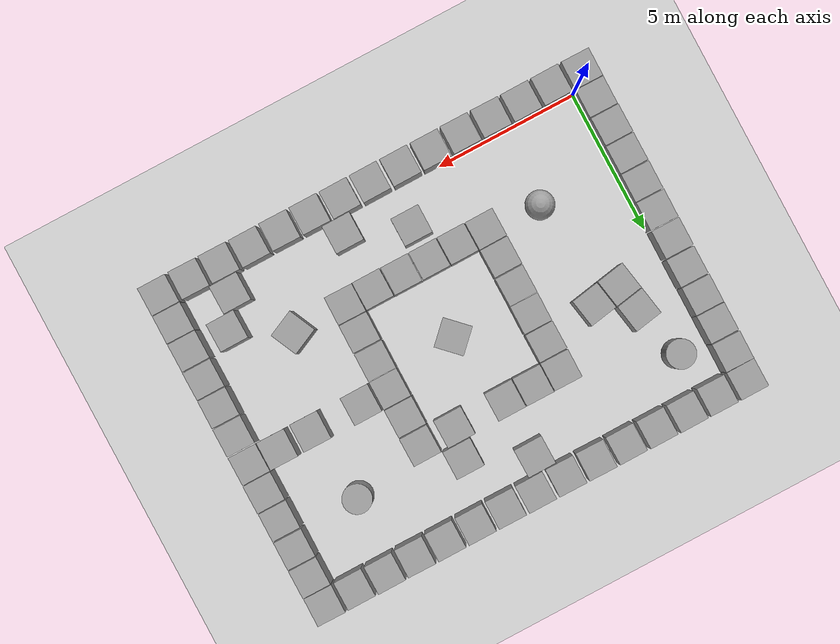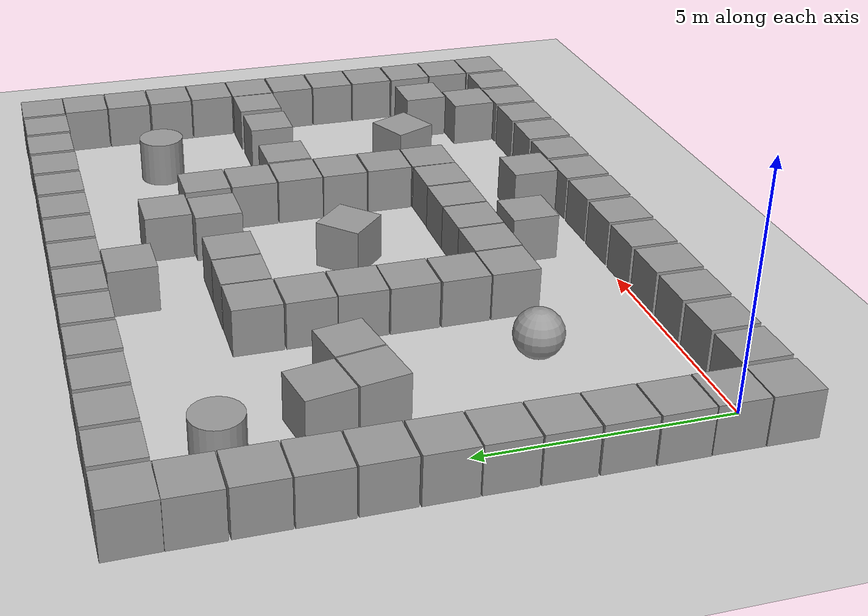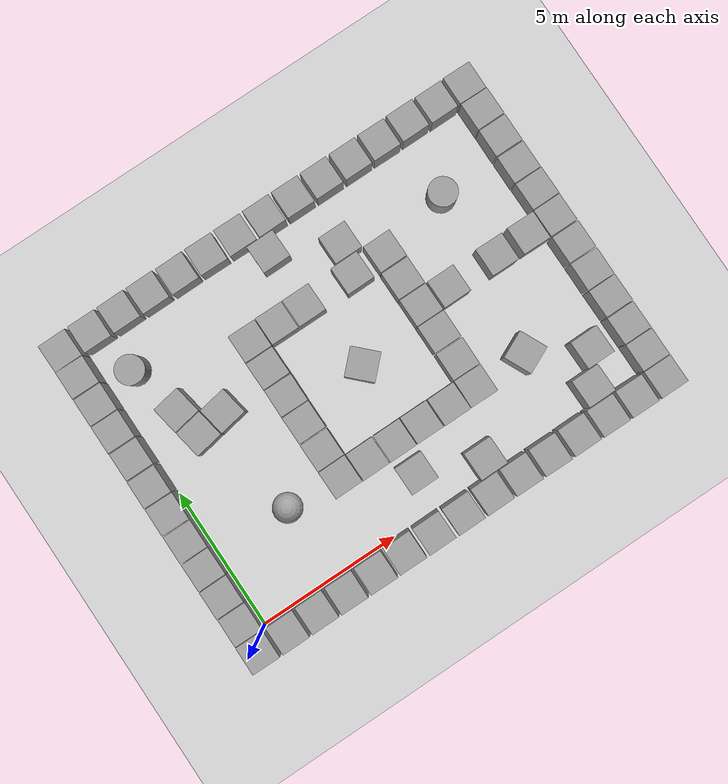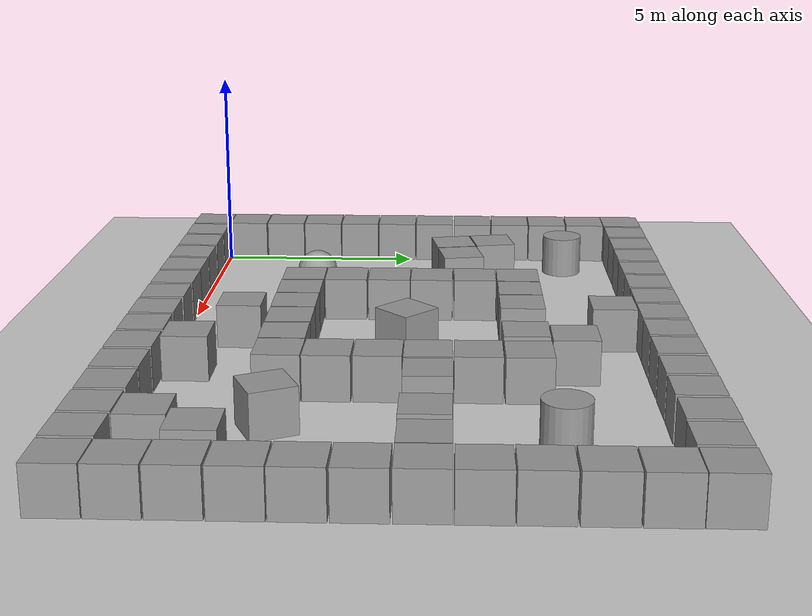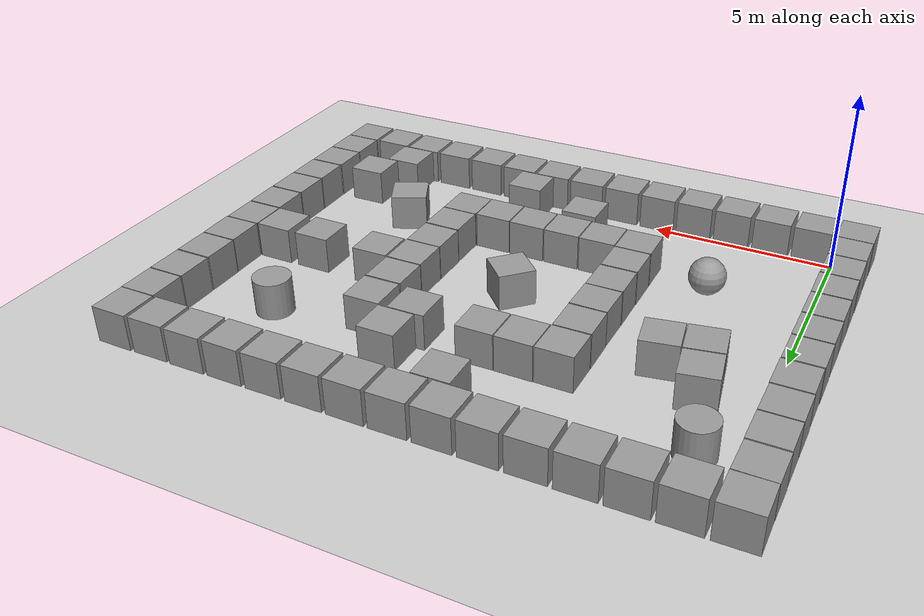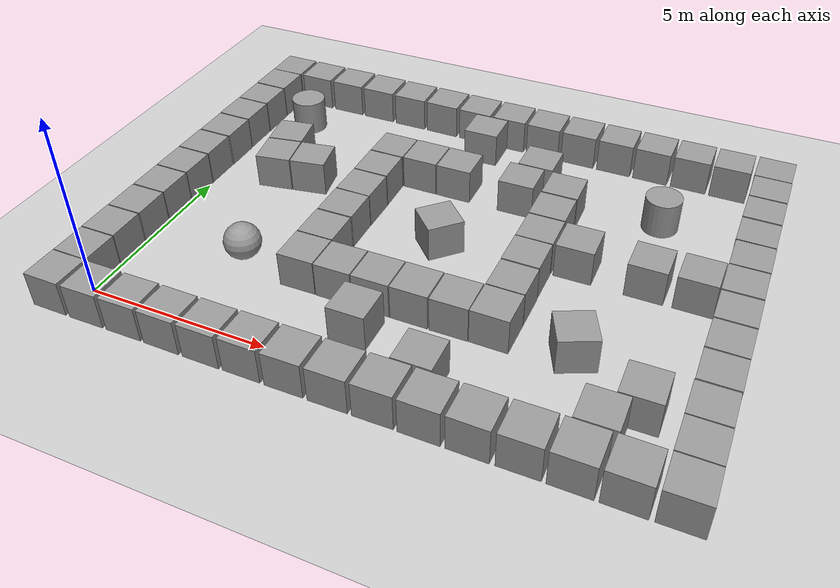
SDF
<?xml version="1.0"?>
<sdf version="1.6">
  <world name="ring_mix">
    <include><uri>model://ground_plane</uri></include>
    <include><uri>model://sun</uri></include>
    <physics type="ode"><real_time_update_rate>1000.0</real_time_update_rate><max_step_size>0.001</max_step_size><real_time_factor>1</real_time_factor><ode><solver><type>quick</type><iters>150</iters><precon_iters>0</precon_iters><sor>1.400000</sor><use_dynamic_moi_rescaling>1</use_dynamic_moi_rescaling></solver><constraints><cfm>0.00001</cfm><erp>0.2</erp><contact_max_correcting_vel>2000.000000</contact_max_correcting_vel><contact_surface_layer>0.01000</contact_surface_layer></constraints></ode></physics>
    <scene><shadows>false</shadows></scene>
    <gui fullscreen="0"><camera name="user_camera"><pose>7.2 -5.5 13 0 0.95 1.5707</pose><view_controller>orbit</view_controller><projection_type>perspective</projection_type></camera></gui>
    <model name='unit_box_0'>
      <pose>-0.5052 -0.5008 0.5 0 0 -0.00531</pose>
      <link name='link'><inertial><mass>1</mass><inertia><ixx>0.166667</ixx><ixy>0</ixy><ixz>0</ixz><iyy>0.166667</iyy><iyz>0</iyz><izz>0.166667</izz></inertia></inertial>
        <collision name='collision'><geometry><box><size>1 1 1</size></box></geometry><max_contacts>10</max_contacts></collision>
        <visual name='visual'><geometry><box><size>1 1 1</size></box></geometry><material><script><uri>file://media/materials/scripts/gazebo.material</uri><name>Gazebo/Grey</name></script></material></visual>
      </link>
    </model>
    <model name='unit_box_1'>
      <pose>0.6029 -0.5029 0.5 0 0 0.00757</pose>
      <link name='link'><inertial><mass>1</mass><inertia><ixx>0.166667</ixx><ixy>0</ixy><ixz>0</ixz><iyy>0.166667</iyy><iyz>0</iyz><izz>0.166667</izz></inertia></inertial>
        <collision name='collision'><geometry><box><size>1 1 1</size></box></geometry><max_contacts>10</max_contacts></collision>
        <visual name='visual'><geometry><box><size>1 1 1</size></box></geometry><material><script><uri>file://media/materials/scripts/gazebo.material</uri><name>Gazebo/Grey</name></script></material></visual>
      </link>
    </model>
    <model name='unit_box_2'>
      <pose>1.7079 -0.4971 0.5 0 0 0.00893</pose>
      <link name='link'><inertial><mass>1</mass><inertia><ixx>0.166667</ixx><ixy>0</ixy><ixz>0</ixz><iyy>0.166667</iyy><iyz>0</iyz><izz>0.166667</izz></inertia></inertial>
        <collision name='collision'><geometry><box><size>1 1 1</size></box></geometry><max_contacts>10</max_contacts></collision>
        <visual name='visual'><geometry><box><size>1 1 1</size></box></geometry><material><script><uri>file://media/materials/scripts/gazebo.material</uri><name>Gazebo/Grey</name></script></material></visual>
      </link>
    </model>
    <model name='unit_box_3'>
      <pose>2.8107 -0.5004 0.5 0 0 -0.00779</pose>
      <link name='link'><inertial><mass>1</mass><inertia><ixx>0.166667</ixx><ixy>0</ixy><ixz>0</ixz><iyy>0.166667</iyy><iyz>0</iyz><izz>0.166667</izz></inertia></inertial>
        <collision name='collision'><geometry><box><size>1 1 1</size></box></geometry><max_contacts>10</max_contacts></collision>
        <visual name='visual'><geometry><box><size>1 1 1</size></box></geometry><material><script><uri>file://media/materials/scripts/gazebo.material</uri><name>Gazebo/Grey</name></script></material></visual>
      </link>
    </model>
    <model name='unit_box_4'>
      <pose>3.9177 -0.5052 0.5 0 0 -0.00286</pose>
      <link name='link'><inertial><mass>1</mass><inertia><ixx>0.166667</ixx><ixy>0</ixy><ixz>0</ixz><iyy>0.166667</iyy><iyz>0</iyz><izz>0.166667</izz></inertia></inertial>
        <collision name='collision'><geometry><box><size>1 1 1</size></box></geometry><max_contacts>10</max_contacts></collision>
        <visual name='visual'><geometry><box><size>1 1 1</size></box></geometry><material><script><uri>file://media/materials/scripts/gazebo.material</uri><name>Gazebo/Grey</name></script></material></visual>
      </link>
    </model>
    <model name='unit_box_5'>
      <pose>5.0139 -0.4973 0.5 0 0 -0.00088</pose>
      <link name='link'><inertial><mass>1</mass><inertia><ixx>0.166667</ixx><ixy>0</ixy><ixz>0</ixz><iyy>0.166667</iyy><iyz>0</iyz><izz>0.166667</izz></inertia></inertial>
        <collision name='collision'><geometry><box><size>1 1 1</size></box></geometry><max_contacts>10</max_contacts></collision>
        <visual name='visual'><geometry><box><size>1 1 1</size></box></geometry><material><script><uri>file://media/materials/scripts/gazebo.material</uri><name>Gazebo/Grey</name></script></material></visual>
      </link>
    </model>
    <model name='unit_box_6'>
      <pose>6.1215 -0.4997 0.5 0 0 0.00718</pose>
      <link name='link'><inertial><mass>1</mass><inertia><ixx>0.166667</ixx><ixy>0</ixy><ixz>0</ixz><iyy>0.166667</iyy><iyz>0</iyz><izz>0.166667</izz></inertia></inertial>
        <collision name='collision'><geometry><box><size>1 1 1</size></box></geometry><max_contacts>10</max_contacts></collision>
        <visual name='visual'><geometry><box><size>1 1 1</size></box></geometry><material><script><uri>file://media/materials/scripts/gazebo.material</uri><name>Gazebo/Grey</name></script></material></visual>
      </link>
    </model>
    <model name='unit_box_7'>
      <pose>7.2308 -0.5016 0.5 0 0 0.00797</pose>
      <link name='link'><inertial><mass>1</mass><inertia><ixx>0.166667</ixx><ixy>0</ixy><ixz>0</ixz><iyy>0.166667</iyy><iyz>0</iyz><izz>0.166667</izz></inertia></inertial>
        <collision name='collision'><geometry><box><size>1 1 1</size></box></geometry><max_contacts>10</max_contacts></collision>
        <visual name='visual'><geometry><box><size>1 1 1</size></box></geometry><material><script><uri>file://media/materials/scripts/gazebo.material</uri><name>Gazebo/Grey</name></script></material></visual>
      </link>
    </model>
    <model name='unit_box_8'>
      <pose>8.3311 -0.4976 0.5 0 0 0.00999</pose>
      <link name='link'><inertial><mass>1</mass><inertia><ixx>0.166667</ixx><ixy>0</ixy><ixz>0</ixz><iyy>0.166667</iyy><iyz>0</iyz><izz>0.166667</izz></inertia></inertial>
        <collision name='collision'><geometry><box><size>1 1 1</size></box></geometry><max_contacts>10</max_contacts></collision>
        <visual name='visual'><geometry><box><size>1 1 1</size></box></geometry><material><script><uri>file://media/materials/scripts/gazebo.material</uri><name>Gazebo/Grey</name></script></material></visual>
      </link>
    </model>
    <model name='unit_box_9'>
      <pose>9.4286 -0.5022 0.5 0 0 -0.00036</pose>
      <link name='link'><inertial><mass>1</mass><inertia><ixx>0.166667</ixx><ixy>0</ixy><ixz>0</ixz><iyy>0.166667</iyy><iyz>0</iyz><izz>0.166667</izz></inertia></inertial>
        <collision name='collision'><geometry><box><size>1 1 1</size></box></geometry><max_contacts>10</max_contacts></collision>
        <visual name='visual'><geometry><box><size>1 1 1</size></box></geometry><material><script><uri>file://media/materials/scripts/gazebo.material</uri><name>Gazebo/Grey</name></script></material></visual>
      </link>
    </model>
    <model name='unit_box_10'>
      <pose>10.5334 -0.5025 0.5 0 0 -0.00630</pose>
      <link name='link'><inertial><mass>1</mass><inertia><ixx>0.166667</ixx><ixy>0</ixy><ixz>0</ixz><iyy>0.166667</iyy><iyz>0</iyz><izz>0.166667</izz></inertia></inertial>
        <collision name='collision'><geometry><box><size>1 1 1</size></box></geometry><max_contacts>10</max_contacts></collision>
        <visual name='visual'><geometry><box><size>1 1 1</size></box></geometry><material><script><uri>file://media/materials/scripts/gazebo.material</uri><name>Gazebo/Grey</name></script></material></visual>
      </link>
    </model>
    <model name='unit_box_11'>
      <pose>11.6443 -0.4944 0.5 0 0 0.00788</pose>
      <link name='link'><inertial><mass>1</mass><inertia><ixx>0.166667</ixx><ixy>0</ixy><ixz>0</ixz><iyy>0.166667</iyy><iyz>0</iyz><izz>0.166667</izz></inertia></inertial>
        <collision name='collision'><geometry><box><size>1 1 1</size></box></geometry><max_contacts>10</max_contacts></collision>
        <visual name='visual'><geometry><box><size>1 1 1</size></box></geometry><material><script><uri>file://media/materials/scripts/gazebo.material</uri><name>Gazebo/Grey</name></script></material></visual>
      </link>
    </model>
    <model name='unit_box_12'>
      <pose>12.7464 -0.5011 0.5 0 0 -0.00397</pose>
      <link name='link'><inertial><mass>1</mass><inertia><ixx>0.166667</ixx><ixy>0</ixy><ixz>0</ixz><iyy>0.166667</iyy><iyz>0</iyz><izz>0.166667</izz></inertia></inertial>
        <collision name='collision'><geometry><box><size>1 1 1</size></box></geometry><max_contacts>10</max_contacts></collision>
        <visual name='visual'><geometry><box><size>1 1 1</size></box></geometry><material><script><uri>file://media/materials/scripts/gazebo.material</uri><name>Gazebo/Grey</name></script></material></visual>
      </link>
    </model>
    <model name='unit_box_13'>
      <pose>13.8453 -0.5058 0.5 0 0 -0.00800</pose>
      <link name='link'><inertial><mass>1</mass><inertia><ixx>0.166667</ixx><ixy>0</ixy><ixz>0</ixz><iyy>0.166667</iyy><iyz>0</iyz><izz>0.166667</izz></inertia></inertial>
        <collision name='collision'><geometry><box><size>1 1 1</size></box></geometry><max_contacts>10</max_contacts></collision>
        <visual name='visual'><geometry><box><size>1 1 1</size></box></geometry><material><script><uri>file://media/materials/scripts/gazebo.material</uri><name>Gazebo/Grey</name></script></material></visual>
      </link>
    </model>
    <model name='unit_box_14'>
      <pose>14.9497 -0.5010 0.5 0 0 0.00322</pose>
      <link name='link'><inertial><mass>1</mass><inertia><ixx>0.166667</ixx><ixy>0</ixy><ixz>0</ixz><iyy>0.166667</iyy><iyz>0</iyz><izz>0.166667</izz></inertia></inertial>
        <collision name='collision'><geometry><box><size>1 1 1</size></box></geometry><max_contacts>10</max_contacts></collision>
        <visual name='visual'><geometry><box><size>1 1 1</size></box></geometry><material><script><uri>file://media/materials/scripts/gazebo.material</uri><name>Gazebo/Grey</name></script></material></visual>
      </link>
    </model>
    <model name='unit_box_15'>
      <pose>-0.4993 10.8252 0.5 0 0 0.00730</pose>
      <link name='link'><inertial><mass>1</mass><inertia><ixx>0.166667</ixx><ixy>0</ixy><ixz>0</ixz><iyy>0.166667</iyy><iyz>0</iyz><izz>0.166667</izz></inertia></inertial>
        <collision name='collision'><geometry><box><size>1 1 1</size></box></geometry><max_contacts>10</max_contacts></collision>
        <visual name='visual'><geometry><box><size>1 1 1</size></box></geometry><material><script><uri>file://media/materials/scripts/gazebo.material</uri><name>Gazebo/Grey</name></script></material></visual>
      </link>
    </model>
    <model name='unit_box_16'>
      <pose>0.6027 10.8297 0.5 0 0 -0.00270</pose>
      <link name='link'><inertial><mass>1</mass><inertia><ixx>0.166667</ixx><ixy>0</ixy><ixz>0</ixz><iyy>0.166667</iyy><iyz>0</iyz><izz>0.166667</izz></inertia></inertial>
        <collision name='collision'><geometry><box><size>1 1 1</size></box></geometry><max_contacts>10</max_contacts></collision>
        <visual name='visual'><geometry><box><size>1 1 1</size></box></geometry><material><script><uri>file://media/materials/scripts/gazebo.material</uri><name>Gazebo/Grey</name></script></material></visual>
      </link>
    </model>
    <model name='unit_box_17'>
      <pose>1.7055 10.8350 0.5 0 0 0.00976</pose>
      <link name='link'><inertial><mass>1</mass><inertia><ixx>0.166667</ixx><ixy>0</ixy><ixz>0</ixz><iyy>0.166667</iyy><iyz>0</iyz><izz>0.166667</izz></inertia></inertial>
        <collision name='collision'><geometry><box><size>1 1 1</size></box></geometry><max_contacts>10</max_contacts></collision>
        <visual name='visual'><geometry><box><size>1 1 1</size></box></geometry><material><script><uri>file://media/materials/scripts/gazebo.material</uri><name>Gazebo/Grey</name></script></material></visual>
      </link>
    </model>
    <model name='unit_box_18'>
      <pose>2.8069 10.8350 0.5 0 0 0.00651</pose>
      <link name='link'><inertial><mass>1</mass><inertia><ixx>0.166667</ixx><ixy>0</ixy><ixz>0</ixz><iyy>0.166667</iyy><iyz>0</iyz><izz>0.166667</izz></inertia></inertial>
        <collision name='collision'><geometry><box><size>1 1 1</size></box></geometry><max_contacts>10</max_contacts></collision>
        <visual name='visual'><geometry><box><size>1 1 1</size></box></geometry><material><script><uri>file://media/materials/scripts/gazebo.material</uri><name>Gazebo/Grey</name></script></material></visual>
      </link>
    </model>
    <model name='unit_box_19'>
      <pose>3.9182 10.8274 0.5 0 0 0.00834</pose>
      <link name='link'><inertial><mass>1</mass><inertia><ixx>0.166667</ixx><ixy>0</ixy><ixz>0</ixz><iyy>0.166667</iyy><iyz>0</iyz><izz>0.166667</izz></inertia></inertial>
        <collision name='collision'><geometry><box><size>1 1 1</size></box></geometry><max_contacts>10</max_contacts></collision>
        <visual name='visual'><geometry><box><size>1 1 1</size></box></geometry><material><script><uri>file://media/materials/scripts/gazebo.material</uri><name>Gazebo/Grey</name></script></material></visual>
      </link>
    </model>
    <model name='unit_box_20'>
      <pose>5.0188 10.8295 0.5 0 0 -0.00974</pose>
      <link name='link'><inertial><mass>1</mass><inertia><ixx>0.166667</ixx><ixy>0</ixy><ixz>0</ixz><iyy>0.166667</iyy><iyz>0</iyz><izz>0.166667</izz></inertia></inertial>
        <collision name='collision'><geometry><box><size>1 1 1</size></box></geometry><max_contacts>10</max_contacts></collision>
        <visual name='visual'><geometry><box><size>1 1 1</size></box></geometry><material><script><uri>file://media/materials/scripts/gazebo.material</uri><name>Gazebo/Grey</name></script></material></visual>
      </link>
    </model>
    <model name='unit_box_21'>
      <pose>6.1216 10.8261 0.5 0 0 -0.00443</pose>
      <link name='link'><inertial><mass>1</mass><inertia><ixx>0.166667</ixx><ixy>0</ixy><ixz>0</ixz><iyy>0.166667</iyy><iyz>0</iyz><izz>0.166667</izz></inertia></inertial>
        <collision name='collision'><geometry><box><size>1 1 1</size></box></geometry><max_contacts>10</max_contacts></collision>
        <visual name='visual'><geometry><box><size>1 1 1</size></box></geometry><material><script><uri>file://media/materials/scripts/gazebo.material</uri><name>Gazebo/Grey</name></script></material></visual>
      </link>
    </model>
    <model name='unit_box_22'>
      <pose>7.2294 10.8281 0.5 0 0 0.00659</pose>
      <link name='link'><inertial><mass>1</mass><inertia><ixx>0.166667</ixx><ixy>0</ixy><ixz>0</ixz><iyy>0.166667</iyy><iyz>0</iyz><izz>0.166667</izz></inertia></inertial>
        <collision name='collision'><geometry><box><size>1 1 1</size></box></geometry><max_contacts>10</max_contacts></collision>
        <visual name='visual'><geometry><box><size>1 1 1</size></box></geometry><material><script><uri>file://media/materials/scripts/gazebo.material</uri><name>Gazebo/Grey</name></script></material></visual>
      </link>
    </model>
    <model name='unit_box_23'>
      <pose>8.3270 10.8254 0.5 0 0 -0.00214</pose>
      <link name='link'><inertial><mass>1</mass><inertia><ixx>0.166667</ixx><ixy>0</ixy><ixz>0</ixz><iyy>0.166667</iyy><iyz>0</iyz><izz>0.166667</izz></inertia></inertial>
        <collision name='collision'><geometry><box><size>1 1 1</size></box></geometry><max_contacts>10</max_contacts></collision>
        <visual name='visual'><geometry><box><size>1 1 1</size></box></geometry><material><script><uri>file://media/materials/scripts/gazebo.material</uri><name>Gazebo/Grey</name></script></material></visual>
      </link>
    </model>
    <model name='unit_box_24'>
      <pose>9.4281 10.8258 0.5 0 0 0.00364</pose>
      <link name='link'><inertial><mass>1</mass><inertia><ixx>0.166667</ixx><ixy>0</ixy><ixz>0</ixz><iyy>0.166667</iyy><iyz>0</iyz><izz>0.166667</izz></inertia></inertial>
        <collision name='collision'><geometry><box><size>1 1 1</size></box></geometry><max_contacts>10</max_contacts></collision>
        <visual name='visual'><geometry><box><size>1 1 1</size></box></geometry><material><script><uri>file://media/materials/scripts/gazebo.material</uri><name>Gazebo/Grey</name></script></material></visual>
      </link>
    </model>
    <model name='unit_box_25'>
      <pose>10.5381 10.8262 0.5 0 0 0.00481</pose>
      <link name='link'><inertial><mass>1</mass><inertia><ixx>0.166667</ixx><ixy>0</ixy><ixz>0</ixz><iyy>0.166667</iyy><iyz>0</iyz><izz>0.166667</izz></inertia></inertial>
        <collision name='collision'><geometry><box><size>1 1 1</size></box></geometry><max_contacts>10</max_contacts></collision>
        <visual name='visual'><geometry><box><size>1 1 1</size></box></geometry><material><script><uri>file://media/materials/scripts/gazebo.material</uri><name>Gazebo/Grey</name></script></material></visual>
      </link>
    </model>
    <model name='unit_box_26'>
      <pose>11.6397 10.8252 0.5 0 0 -0.00839</pose>
      <link name='link'><inertial><mass>1</mass><inertia><ixx>0.166667</ixx><ixy>0</ixy><ixz>0</ixz><iyy>0.166667</iyy><iyz>0</iyz><izz>0.166667</izz></inertia></inertial>
        <collision name='collision'><geometry><box><size>1 1 1</size></box></geometry><max_contacts>10</max_contacts></collision>
        <visual name='visual'><geometry><box><size>1 1 1</size></box></geometry><material><script><uri>file://media/materials/scripts/gazebo.material</uri><name>Gazebo/Grey</name></script></material></visual>
      </link>
    </model>
    <model name='unit_box_27'>
      <pose>12.7453 10.8349 0.5 0 0 0.00679</pose>
      <link name='link'><inertial><mass>1</mass><inertia><ixx>0.166667</ixx><ixy>0</ixy><ixz>0</ixz><iyy>0.166667</iyy><iyz>0</iyz><izz>0.166667</izz></inertia></inertial>
        <collision name='collision'><geometry><box><size>1 1 1</size></box></geometry><max_contacts>10</max_contacts></collision>
        <visual name='visual'><geometry><box><size>1 1 1</size></box></geometry><material><script><uri>file://media/materials/scripts/gazebo.material</uri><name>Gazebo/Grey</name></script></material></visual>
      </link>
    </model>
    <model name='unit_box_28'>
      <pose>13.8476 10.8248 0.5 0 0 0.00506</pose>
      <link name='link'><inertial><mass>1</mass><inertia><ixx>0.166667</ixx><ixy>0</ixy><ixz>0</ixz><iyy>0.166667</iyy><iyz>0</iyz><izz>0.166667</izz></inertia></inertial>
        <collision name='collision'><geometry><box><size>1 1 1</size></box></geometry><max_contacts>10</max_contacts></collision>
        <visual name='visual'><geometry><box><size>1 1 1</size></box></geometry><material><script><uri>file://media/materials/scripts/gazebo.material</uri><name>Gazebo/Grey</name></script></material></visual>
      </link>
    </model>
    <model name='unit_box_29'>
      <pose>14.9447 10.8334 0.5 0 0 -0.00861</pose>
      <link name='link'><inertial><mass>1</mass><inertia><ixx>0.166667</ixx><ixy>0</ixy><ixz>0</ixz><iyy>0.166667</iyy><iyz>0</iyz><izz>0.166667</izz></inertia></inertial>
        <collision name='collision'><geometry><box><size>1 1 1</size></box></geometry><max_contacts>10</max_contacts></collision>
        <visual name='visual'><geometry><box><size>1 1 1</size></box></geometry><material><script><uri>file://media/materials/scripts/gazebo.material</uri><name>Gazebo/Grey</name></script></material></visual>
      </link>
    </model>
    <model name='unit_box_30'>
      <pose>-0.4943 0.5198 0.5 0 0 -0.00595</pose>
      <link name='link'><inertial><mass>1</mass><inertia><ixx>0.166667</ixx><ixy>0</ixy><ixz>0</ixz><iyy>0.166667</iyy><iyz>0</iyz><izz>0.166667</izz></inertia></inertial>
        <collision name='collision'><geometry><box><size>1 1 1</size></box></geometry><max_contacts>10</max_contacts></collision>
        <visual name='visual'><geometry><box><size>1 1 1</size></box></geometry><material><script><uri>file://media/materials/scripts/gazebo.material</uri><name>Gazebo/Grey</name></script></material></visual>
      </link>
    </model>
    <model name='unit_box_31'>
      <pose>-0.5048 1.5494 0.5 0 0 0.00428</pose>
      <link name='link'><inertial><mass>1</mass><inertia><ixx>0.166667</ixx><ixy>0</ixy><ixz>0</ixz><iyy>0.166667</iyy><iyz>0</iyz><izz>0.166667</izz></inertia></inertial>
        <collision name='collision'><geometry><box><size>1 1 1</size></box></geometry><max_contacts>10</max_contacts></collision>
        <visual name='visual'><geometry><box><size>1 1 1</size></box></geometry><material><script><uri>file://media/materials/scripts/gazebo.material</uri><name>Gazebo/Grey</name></script></material></visual>
      </link>
    </model>
    <model name='unit_box_32'>
      <pose>-0.5028 2.5794 0.5 0 0 0.00528</pose>
      <link name='link'><inertial><mass>1</mass><inertia><ixx>0.166667</ixx><ixy>0</ixy><ixz>0</ixz><iyy>0.166667</iyy><iyz>0</iyz><izz>0.166667</izz></inertia></inertial>
        <collision name='collision'><geometry><box><size>1 1 1</size></box></geometry><max_contacts>10</max_contacts></collision>
        <visual name='visual'><geometry><box><size>1 1 1</size></box></geometry><material><script><uri>file://media/materials/scripts/gazebo.material</uri><name>Gazebo/Grey</name></script></material></visual>
      </link>
    </model>
    <model name='unit_box_33'>
      <pose>-0.5040 3.6127 0.5 0 0 -0.00603</pose>
      <link name='link'><inertial><mass>1</mass><inertia><ixx>0.166667</ixx><ixy>0</ixy><ixz>0</ixz><iyy>0.166667</iyy><iyz>0</iyz><izz>0.166667</izz></inertia></inertial>
        <collision name='collision'><geometry><box><size>1 1 1</size></box></geometry><max_contacts>10</max_contacts></collision>
        <visual name='visual'><geometry><box><size>1 1 1</size></box></geometry><material><script><uri>file://media/materials/scripts/gazebo.material</uri><name>Gazebo/Grey</name></script></material></visual>
      </link>
    </model>
    <model name='unit_box_34'>
      <pose>-0.5043 4.6458 0.5 0 0 -0.00899</pose>
      <link name='link'><inertial><mass>1</mass><inertia><ixx>0.166667</ixx><ixy>0</ixy><ixz>0</ixz><iyy>0.166667</iyy><iyz>0</iyz><izz>0.166667</izz></inertia></inertial>
        <collision name='collision'><geometry><box><size>1 1 1</size></box></geometry><max_contacts>10</max_contacts></collision>
        <visual name='visual'><geometry><box><size>1 1 1</size></box></geometry><material><script><uri>file://media/materials/scripts/gazebo.material</uri><name>Gazebo/Grey</name></script></material></visual>
      </link>
    </model>
    <model name='unit_box_35'>
      <pose>-0.5058 5.6766 0.5 0 0 -0.00225</pose>
      <link name='link'><inertial><mass>1</mass><inertia><ixx>0.166667</ixx><ixy>0</ixy><ixz>0</ixz><iyy>0.166667</iyy><iyz>0</iyz><izz>0.166667</izz></inertia></inertial>
        <collision name='collision'><geometry><box><size>1 1 1</size></box></geometry><max_contacts>10</max_contacts></collision>
        <visual name='visual'><geometry><box><size>1 1 1</size></box></geometry><material><script><uri>file://media/materials/scripts/gazebo.material</uri><name>Gazebo/Grey</name></script></material></visual>
      </link>
    </model>
    <model name='unit_box_36'>
      <pose>-0.4949 6.7174 0.5 0 0 0.00106</pose>
      <link name='link'><inertial><mass>1</mass><inertia><ixx>0.166667</ixx><ixy>0</ixy><ixz>0</ixz><iyy>0.166667</iyy><iyz>0</iyz><izz>0.166667</izz></inertia></inertial>
        <collision name='collision'><geometry><box><size>1 1 1</size></box></geometry><max_contacts>10</max_contacts></collision>
        <visual name='visual'><geometry><box><size>1 1 1</size></box></geometry><material><script><uri>file://media/materials/scripts/gazebo.material</uri><name>Gazebo/Grey</name></script></material></visual>
      </link>
    </model>
    <model name='unit_box_37'>
      <pose>-0.5040 7.7507 0.5 0 0 -0.00486</pose>
      <link name='link'><inertial><mass>1</mass><inertia><ixx>0.166667</ixx><ixy>0</ixy><ixz>0</ixz><iyy>0.166667</iyy><iyz>0</iyz><izz>0.166667</izz></inertia></inertial>
        <collision name='collision'><geometry><box><size>1 1 1</size></box></geometry><max_contacts>10</max_contacts></collision>
        <visual name='visual'><geometry><box><size>1 1 1</size></box></geometry><material><script><uri>file://media/materials/scripts/gazebo.material</uri><name>Gazebo/Grey</name></script></material></visual>
      </link>
    </model>
    <model name='unit_box_38'>
      <pose>-0.4997 8.7785 0.5 0 0 -0.00174</pose>
      <link name='link'><inertial><mass>1</mass><inertia><ixx>0.166667</ixx><ixy>0</ixy><ixz>0</ixz><iyy>0.166667</iyy><iyz>0</iyz><izz>0.166667</izz></inertia></inertial>
        <collision name='collision'><geometry><box><size>1 1 1</size></box></geometry><max_contacts>10</max_contacts></collision>
        <visual name='visual'><geometry><box><size>1 1 1</size></box></geometry><material><script><uri>file://media/materials/scripts/gazebo.material</uri><name>Gazebo/Grey</name></script></material></visual>
      </link>
    </model>
    <model name='unit_box_39'>
      <pose>-0.5033 9.8148 0.5 0 0 -0.00820</pose>
      <link name='link'><inertial><mass>1</mass><inertia><ixx>0.166667</ixx><ixy>0</ixy><ixz>0</ixz><iyy>0.166667</iyy><iyz>0</iyz><izz>0.166667</izz></inertia></inertial>
        <collision name='collision'><geometry><box><size>1 1 1</size></box></geometry><max_contacts>10</max_contacts></collision>
        <visual name='visual'><geometry><box><size>1 1 1</size></box></geometry><material><script><uri>file://media/materials/scripts/gazebo.material</uri><name>Gazebo/Grey</name></script></material></visual>
      </link>
    </model>
    <model name='unit_box_40'>
      <pose>14.9481 0.5223 0.5 0 0 -0.00459</pose>
      <link name='link'><inertial><mass>1</mass><inertia><ixx>0.166667</ixx><ixy>0</ixy><ixz>0</ixz><iyy>0.166667</iyy><iyz>0</iyz><izz>0.166667</izz></inertia></inertial>
        <collision name='collision'><geometry><box><size>1 1 1</size></box></geometry><max_contacts>10</max_contacts></collision>
        <visual name='visual'><geometry><box><size>1 1 1</size></box></geometry><material><script><uri>file://media/materials/scripts/gazebo.material</uri><name>Gazebo/Grey</name></script></material></visual>
      </link>
    </model>
    <model name='unit_box_41'>
      <pose>14.9443 1.5472 0.5 0 0 0.00473</pose>
      <link name='link'><inertial><mass>1</mass><inertia><ixx>0.166667</ixx><ixy>0</ixy><ixz>0</ixz><iyy>0.166667</iyy><iyz>0</iyz><izz>0.166667</izz></inertia></inertial>
        <collision name='collision'><geometry><box><size>1 1 1</size></box></geometry><max_contacts>10</max_contacts></collision>
        <visual name='visual'><geometry><box><size>1 1 1</size></box></geometry><material><script><uri>file://media/materials/scripts/gazebo.material</uri><name>Gazebo/Grey</name></script></material></visual>
      </link>
    </model>
    <model name='unit_box_42'>
      <pose>14.9503 2.5828 0.5 0 0 0.00717</pose>
      <link name='link'><inertial><mass>1</mass><inertia><ixx>0.166667</ixx><ixy>0</ixy><ixz>0</ixz><iyy>0.166667</iyy><iyz>0</iyz><izz>0.166667</izz></inertia></inertial>
        <collision name='collision'><geometry><box><size>1 1 1</size></box></geometry><max_contacts>10</max_contacts></collision>
        <visual name='visual'><geometry><box><size>1 1 1</size></box></geometry><material><script><uri>file://media/materials/scripts/gazebo.material</uri><name>Gazebo/Grey</name></script></material></visual>
      </link>
    </model>
    <model name='unit_box_43'>
      <pose>14.9518 3.6130 0.5 0 0 -0.00614</pose>
      <link name='link'><inertial><mass>1</mass><inertia><ixx>0.166667</ixx><ixy>0</ixy><ixz>0</ixz><iyy>0.166667</iyy><iyz>0</iyz><izz>0.166667</izz></inertia></inertial>
        <collision name='collision'><geometry><box><size>1 1 1</size></box></geometry><max_contacts>10</max_contacts></collision>
        <visual name='visual'><geometry><box><size>1 1 1</size></box></geometry><material><script><uri>file://media/materials/scripts/gazebo.material</uri><name>Gazebo/Grey</name></script></material></visual>
      </link>
    </model>
    <model name='unit_box_44'>
      <pose>14.9547 4.6478 0.5 0 0 0.00109</pose>
      <link name='link'><inertial><mass>1</mass><inertia><ixx>0.166667</ixx><ixy>0</ixy><ixz>0</ixz><iyy>0.166667</iyy><iyz>0</iyz><izz>0.166667</izz></inertia></inertial>
        <collision name='collision'><geometry><box><size>1 1 1</size></box></geometry><max_contacts>10</max_contacts></collision>
        <visual name='visual'><geometry><box><size>1 1 1</size></box></geometry><material><script><uri>file://media/materials/scripts/gazebo.material</uri><name>Gazebo/Grey</name></script></material></visual>
      </link>
    </model>
    <model name='unit_box_45'>
      <pose>14.9483 5.6864 0.5 0 0 0.00229</pose>
      <link name='link'><inertial><mass>1</mass><inertia><ixx>0.166667</ixx><ixy>0</ixy><ixz>0</ixz><iyy>0.166667</iyy><iyz>0</iyz><izz>0.166667</izz></inertia></inertial>
        <collision name='collision'><geometry><box><size>1 1 1</size></box></geometry><max_contacts>10</max_contacts></collision>
        <visual name='visual'><geometry><box><size>1 1 1</size></box></geometry><material><script><uri>file://media/materials/scripts/gazebo.material</uri><name>Gazebo/Grey</name></script></material></visual>
      </link>
    </model>
    <model name='unit_box_46'>
      <pose>14.9539 6.7122 0.5 0 0 0.00385</pose>
      <link name='link'><inertial><mass>1</mass><inertia><ixx>0.166667</ixx><ixy>0</ixy><ixz>0</ixz><iyy>0.166667</iyy><iyz>0</iyz><izz>0.166667</izz></inertia></inertial>
        <collision name='collision'><geometry><box><size>1 1 1</size></box></geometry><max_contacts>10</max_contacts></collision>
        <visual name='visual'><geometry><box><size>1 1 1</size></box></geometry><material><script><uri>file://media/materials/scripts/gazebo.material</uri><name>Gazebo/Grey</name></script></material></visual>
      </link>
    </model>
    <model name='unit_box_47'>
      <pose>14.9449 7.7410 0.5 0 0 -0.00419</pose>
      <link name='link'><inertial><mass>1</mass><inertia><ixx>0.166667</ixx><ixy>0</ixy><ixz>0</ixz><iyy>0.166667</iyy><iyz>0</iyz><izz>0.166667</izz></inertia></inertial>
        <collision name='collision'><geometry><box><size>1 1 1</size></box></geometry><max_contacts>10</max_contacts></collision>
        <visual name='visual'><geometry><box><size>1 1 1</size></box></geometry><material><script><uri>file://media/materials/scripts/gazebo.material</uri><name>Gazebo/Grey</name></script></material></visual>
      </link>
    </model>
    <model name='unit_box_48'>
      <pose>14.9475 8.7832 0.5 0 0 -0.00575</pose>
      <link name='link'><inertial><mass>1</mass><inertia><ixx>0.166667</ixx><ixy>0</ixy><ixz>0</ixz><iyy>0.166667</iyy><iyz>0</iyz><izz>0.166667</izz></inertia></inertial>
        <collision name='collision'><geometry><box><size>1 1 1</size></box></geometry><max_contacts>10</max_contacts></collision>
        <visual name='visual'><geometry><box><size>1 1 1</size></box></geometry><material><script><uri>file://media/materials/scripts/gazebo.material</uri><name>Gazebo/Grey</name></script></material></visual>
      </link>
    </model>
    <model name='unit_box_49'>
      <pose>14.9507 9.8145 0.5 0 0 0.00076</pose>
      <link name='link'><inertial><mass>1</mass><inertia><ixx>0.166667</ixx><ixy>0</ixy><ixz>0</ixz><iyy>0.166667</iyy><iyz>0</iyz><izz>0.166667</izz></inertia></inertial>
        <collision name='collision'><geometry><box><size>1 1 1</size></box></geometry><max_contacts>10</max_contacts></collision>
        <visual name='visual'><geometry><box><size>1 1 1</size></box></geometry><material><script><uri>file://media/materials/scripts/gazebo.material</uri><name>Gazebo/Grey</name></script></material></visual>
      </link>
    </model>
    <model name='unit_box_50'>
      <pose>8.7748 0.5325 0.5 0 0 0.00526</pose>
      <link name='link'><inertial><mass>1</mass><inertia><ixx>0.166667</ixx><ixy>0</ixy><ixz>0</ixz><iyy>0.166667</iyy><iyz>0</iyz><izz>0.166667</izz></inertia></inertial>
        <collision name='collision'><geometry><box><size>1 1 1</size></box></geometry><max_contacts>10</max_contacts></collision>
        <visual name='visual'><geometry><box><size>1 1 1</size></box></geometry><material><script><uri>file://media/materials/scripts/gazebo.material</uri><name>Gazebo/Grey</name></script></material></visual>
      </link>
    </model>
    <model name='unit_box_51'>
      <pose>12.8857 0.5277 0.5 0 0 0.00773</pose>
      <link name='link'><inertial><mass>1</mass><inertia><ixx>0.166667</ixx><ixy>0</ixy><ixz>0</ixz><iyy>0.166667</iyy><iyz>0</iyz><izz>0.166667</izz></inertia></inertial>
        <collision name='collision'><geometry><box><size>1 1 1</size></box></geometry><max_contacts>10</max_contacts></collision>
        <visual name='visual'><geometry><box><size>1 1 1</size></box></geometry><material><script><uri>file://media/materials/scripts/gazebo.material</uri><name>Gazebo/Grey</name></script></material></visual>
      </link>
    </model>
    <model name='unit_box_52'>
      <pose>6.7086 1.3631 0.5 0 0 0.00283</pose>
      <link name='link'><inertial><mass>1</mass><inertia><ixx>0.166667</ixx><ixy>0</ixy><ixz>0</ixz><iyy>0.166667</iyy><iyz>0</iyz><izz>0.166667</izz></inertia></inertial>
        <collision name='collision'><geometry><box><size>1 1 1</size></box></geometry><max_contacts>10</max_contacts></collision>
        <visual name='visual'><geometry><box><size>1 1 1</size></box></geometry><material><script><uri>file://media/materials/scripts/gazebo.material</uri><name>Gazebo/Grey</name></script></material></visual>
      </link>
    </model>
    <model name='unit_box_53'>
      <pose>13.5458 1.5605 0.5 0 0 0.00966</pose>
      <link name='link'><inertial><mass>1</mass><inertia><ixx>0.166667</ixx><ixy>0</ixy><ixz>0</ixz><iyy>0.166667</iyy><iyz>0</iyz><izz>0.166667</izz></inertia></inertial>
        <collision name='collision'><geometry><box><size>1 1 1</size></box></geometry><max_contacts>10</max_contacts></collision>
        <visual name='visual'><geometry><box><size>1 1 1</size></box></geometry><material><script><uri>file://media/materials/scripts/gazebo.material</uri><name>Gazebo/Grey</name></script></material></visual>
      </link>
    </model>
    <model name='unit_box_54'>
      <pose>4.6539 2.5925 0.5 0 0 0.00959</pose>
      <link name='link'><inertial><mass>1</mass><inertia><ixx>0.166667</ixx><ixy>0</ixy><ixz>0</ixz><iyy>0.166667</iyy><iyz>0</iyz><izz>0.166667</izz></inertia></inertial>
        <collision name='collision'><geometry><box><size>1 1 1</size></box></geometry><max_contacts>10</max_contacts></collision>
        <visual name='visual'><geometry><box><size>1 1 1</size></box></geometry><material><script><uri>file://media/materials/scripts/gazebo.material</uri><name>Gazebo/Grey</name></script></material></visual>
      </link>
    </model>
    <model name='unit_box_55'>
      <pose>5.6821 2.5894 0.5 0 0 0.00669</pose>
      <link name='link'><inertial><mass>1</mass><inertia><ixx>0.166667</ixx><ixy>0</ixy><ixz>0</ixz><iyy>0.166667</iyy><iyz>0</iyz><izz>0.166667</izz></inertia></inertial>
        <collision name='collision'><geometry><box><size>1 1 1</size></box></geometry><max_contacts>10</max_contacts></collision>
        <visual name='visual'><geometry><box><size>1 1 1</size></box></geometry><material><script><uri>file://media/materials/scripts/gazebo.material</uri><name>Gazebo/Grey</name></script></material></visual>
      </link>
    </model>
    <model name='unit_box_56'>
      <pose>6.7125 2.5908 0.5 0 0 0.00509</pose>
      <link name='link'><inertial><mass>1</mass><inertia><ixx>0.166667</ixx><ixy>0</ixy><ixz>0</ixz><iyy>0.166667</iyy><iyz>0</iyz><izz>0.166667</izz></inertia></inertial>
        <collision name='collision'><geometry><box><size>1 1 1</size></box></geometry><max_contacts>10</max_contacts></collision>
        <visual name='visual'><geometry><box><size>1 1 1</size></box></geometry><material><script><uri>file://media/materials/scripts/gazebo.material</uri><name>Gazebo/Grey</name></script></material></visual>
      </link>
    </model>
    <model name='unit_box_57'>
      <pose>7.7405 2.5947 0.5 0 0 0.00063</pose>
      <link name='link'><inertial><mass>1</mass><inertia><ixx>0.166667</ixx><ixy>0</ixy><ixz>0</ixz><iyy>0.166667</iyy><iyz>0</iyz><izz>0.166667</izz></inertia></inertial>
        <collision name='collision'><geometry><box><size>1 1 1</size></box></geometry><max_contacts>10</max_contacts></collision>
        <visual name='visual'><geometry><box><size>1 1 1</size></box></geometry><material><script><uri>file://media/materials/scripts/gazebo.material</uri><name>Gazebo/Grey</name></script></material></visual>
      </link>
    </model>
    <model name='unit_box_58'>
      <pose>8.7748 2.5894 0.5 0 0 0.00649</pose>
      <link name='link'><inertial><mass>1</mass><inertia><ixx>0.166667</ixx><ixy>0</ixy><ixz>0</ixz><iyy>0.166667</iyy><iyz>0</iyz><izz>0.166667</izz></inertia></inertial>
        <collision name='collision'><geometry><box><size>1 1 1</size></box></geometry><max_contacts>10</max_contacts></collision>
        <visual name='visual'><geometry><box><size>1 1 1</size></box></geometry><material><script><uri>file://media/materials/scripts/gazebo.material</uri><name>Gazebo/Grey</name></script></material></visual>
      </link>
    </model>
    <model name='unit_box_59'>
      <pose>9.7944 2.5954 0.5 0 0 -0.00766</pose>
      <link name='link'><inertial><mass>1</mass><inertia><ixx>0.166667</ixx><ixy>0</ixy><ixz>0</ixz><iyy>0.166667</iyy><iyz>0</iyz><izz>0.166667</izz></inertia></inertial>
        <collision name='collision'><geometry><box><size>1 1 1</size></box></geometry><max_contacts>10</max_contacts></collision>
        <visual name='visual'><geometry><box><size>1 1 1</size></box></geometry><material><script><uri>file://media/materials/scripts/gazebo.material</uri><name>Gazebo/Grey</name></script></material></visual>
      </link>
    </model>
    <model name='unit_box_60'>
      <pose>4.6488 3.6172 0.5 0 0 0.00657</pose>
      <link name='link'><inertial><mass>1</mass><inertia><ixx>0.166667</ixx><ixy>0</ixy><ixz>0</ixz><iyy>0.166667</iyy><iyz>0</iyz><izz>0.166667</izz></inertia></inertial>
        <collision name='collision'><geometry><box><size>1 1 1</size></box></geometry><max_contacts>10</max_contacts></collision>
        <visual name='visual'><geometry><box><size>1 1 1</size></box></geometry><material><script><uri>file://media/materials/scripts/gazebo.material</uri><name>Gazebo/Grey</name></script></material></visual>
      </link>
    </model>
    <model name='unit_box_61'>
      <pose>9.8021 3.6191 0.5 0 0 -0.00878</pose>
      <link name='link'><inertial><mass>1</mass><inertia><ixx>0.166667</ixx><ixy>0</ixy><ixz>0</ixz><iyy>0.166667</iyy><iyz>0</iyz><izz>0.166667</izz></inertia></inertial>
        <collision name='collision'><geometry><box><size>1 1 1</size></box></geometry><max_contacts>10</max_contacts></collision>
        <visual name='visual'><geometry><box><size>1 1 1</size></box></geometry><material><script><uri>file://media/materials/scripts/gazebo.material</uri><name>Gazebo/Grey</name></script></material></visual>
      </link>
    </model>
    <model name='unit_box_62'>
      <pose>4.6497 4.6544 0.5 0 0 0.00764</pose>
      <link name='link'><inertial><mass>1</mass><inertia><ixx>0.166667</ixx><ixy>0</ixy><ixz>0</ixz><iyy>0.166667</iyy><iyz>0</iyz><izz>0.166667</izz></inertia></inertial>
        <collision name='collision'><geometry><box><size>1 1 1</size></box></geometry><max_contacts>10</max_contacts></collision>
        <visual name='visual'><geometry><box><size>1 1 1</size></box></geometry><material><script><uri>file://media/materials/scripts/gazebo.material</uri><name>Gazebo/Grey</name></script></material></visual>
      </link>
    </model>
    <model name='unit_box_63'>
      <pose>9.7978 4.6558 0.5 0 0 -0.00442</pose>
      <link name='link'><inertial><mass>1</mass><inertia><ixx>0.166667</ixx><ixy>0</ixy><ixz>0</ixz><iyy>0.166667</iyy><iyz>0</iyz><izz>0.166667</izz></inertia></inertial>
        <collision name='collision'><geometry><box><size>1 1 1</size></box></geometry><max_contacts>10</max_contacts></collision>
        <visual name='visual'><geometry><box><size>1 1 1</size></box></geometry><material><script><uri>file://media/materials/scripts/gazebo.material</uri><name>Gazebo/Grey</name></script></material></visual>
      </link>
    </model>
    <model name='unit_box_64'>
      <pose>4.6553 5.6753 0.5 0 0 -0.00966</pose>
      <link name='link'><inertial><mass>1</mass><inertia><ixx>0.166667</ixx><ixy>0</ixy><ixz>0</ixz><iyy>0.166667</iyy><iyz>0</iyz><izz>0.166667</izz></inertia></inertial>
        <collision name='collision'><geometry><box><size>1 1 1</size></box></geometry><max_contacts>10</max_contacts></collision>
        <visual name='visual'><geometry><box><size>1 1 1</size></box></geometry><material><script><uri>file://media/materials/scripts/gazebo.material</uri><name>Gazebo/Grey</name></script></material></visual>
      </link>
    </model>
    <model name='unit_box_65'>
      <pose>9.8014 5.6778 0.5 0 0 0.00237</pose>
      <link name='link'><inertial><mass>1</mass><inertia><ixx>0.166667</ixx><ixy>0</ixy><ixz>0</ixz><iyy>0.166667</iyy><iyz>0</iyz><izz>0.166667</izz></inertia></inertial>
        <collision name='collision'><geometry><box><size>1 1 1</size></box></geometry><max_contacts>10</max_contacts></collision>
        <visual name='visual'><geometry><box><size>1 1 1</size></box></geometry><material><script><uri>file://media/materials/scripts/gazebo.material</uri><name>Gazebo/Grey</name></script></material></visual>
      </link>
    </model>
    <model name='unit_box_66'>
      <pose>4.6499 6.7064 0.5 0 0 0.00849</pose>
      <link name='link'><inertial><mass>1</mass><inertia><ixx>0.166667</ixx><ixy>0</ixy><ixz>0</ixz><iyy>0.166667</iyy><iyz>0</iyz><izz>0.166667</izz></inertia></inertial>
        <collision name='collision'><geometry><box><size>1 1 1</size></box></geometry><max_contacts>10</max_contacts></collision>
        <visual name='visual'><geometry><box><size>1 1 1</size></box></geometry><material><script><uri>file://media/materials/scripts/gazebo.material</uri><name>Gazebo/Grey</name></script></material></visual>
      </link>
    </model>
    <model name='unit_box_67'>
      <pose>9.7942 6.7076 0.5 0 0 0.00148</pose>
      <link name='link'><inertial><mass>1</mass><inertia><ixx>0.166667</ixx><ixy>0</ixy><ixz>0</ixz><iyy>0.166667</iyy><iyz>0</iyz><izz>0.166667</izz></inertia></inertial>
        <collision name='collision'><geometry><box><size>1 1 1</size></box></geometry><max_contacts>10</max_contacts></collision>
        <visual name='visual'><geometry><box><size>1 1 1</size></box></geometry><material><script><uri>file://media/materials/scripts/gazebo.material</uri><name>Gazebo/Grey</name></script></material></visual>
      </link>
    </model>
    <model name='unit_box_68'>
      <pose>4.6514 7.7379 0.5 0 0 -0.00465</pose>
      <link name='link'><inertial><mass>1</mass><inertia><ixx>0.166667</ixx><ixy>0</ixy><ixz>0</ixz><iyy>0.166667</iyy><iyz>0</iyz><izz>0.166667</izz></inertia></inertial>
        <collision name='collision'><geometry><box><size>1 1 1</size></box></geometry><max_contacts>10</max_contacts></collision>
        <visual name='visual'><geometry><box><size>1 1 1</size></box></geometry><material><script><uri>file://media/materials/scripts/gazebo.material</uri><name>Gazebo/Grey</name></script></material></visual>
      </link>
    </model>
    <model name='unit_box_69'>
      <pose>5.6762 7.7439 0.5 0 0 -0.00227</pose>
      <link name='link'><inertial><mass>1</mass><inertia><ixx>0.166667</ixx><ixy>0</ixy><ixz>0</ixz><iyy>0.166667</iyy><iyz>0</iyz><izz>0.166667</izz></inertia></inertial>
        <collision name='collision'><geometry><box><size>1 1 1</size></box></geometry><max_contacts>10</max_contacts></collision>
        <visual name='visual'><geometry><box><size>1 1 1</size></box></geometry><material><script><uri>file://media/materials/scripts/gazebo.material</uri><name>Gazebo/Grey</name></script></material></visual>
      </link>
    </model>
    <model name='unit_box_70'>
      <pose>6.7065 7.7446 0.5 0 0 0.00591</pose>
      <link name='link'><inertial><mass>1</mass><inertia><ixx>0.166667</ixx><ixy>0</ixy><ixz>0</ixz><iyy>0.166667</iyy><iyz>0</iyz><izz>0.166667</izz></inertia></inertial>
        <collision name='collision'><geometry><box><size>1 1 1</size></box></geometry><max_contacts>10</max_contacts></collision>
        <visual name='visual'><geometry><box><size>1 1 1</size></box></geometry><material><script><uri>file://media/materials/scripts/gazebo.material</uri><name>Gazebo/Grey</name></script></material></visual>
      </link>
    </model>
    <model name='unit_box_71'>
      <pose>8.5545 7.7407 0.5 0 0 0.01021</pose>
      <link name='link'><inertial><mass>1</mass><inertia><ixx>0.166667</ixx><ixy>0</ixy><ixz>0</ixz><iyy>0.166667</iyy><iyz>0</iyz><izz>0.166667</izz></inertia></inertial>
        <collision name='collision'><geometry><box><size>1 1 1</size></box></geometry><max_contacts>10</max_contacts></collision>
        <visual name='visual'><geometry><box><size>1 1 1</size></box></geometry><material><script><uri>file://media/materials/scripts/gazebo.material</uri><name>Gazebo/Grey</name></script></material></visual>
      </link>
    </model>
    <model name='unit_box_72'>
      <pose>9.7989 7.7448 0.5 0 0 0.00967</pose>
      <link name='link'><inertial><mass>1</mass><inertia><ixx>0.166667</ixx><ixy>0</ixy><ixz>0</ixz><iyy>0.166667</iyy><iyz>0</iyz><izz>0.166667</izz></inertia></inertial>
        <collision name='collision'><geometry><box><size>1 1 1</size></box></geometry><max_contacts>10</max_contacts></collision>
        <visual name='visual'><geometry><box><size>1 1 1</size></box></geometry><material><script><uri>file://media/materials/scripts/gazebo.material</uri><name>Gazebo/Grey</name></script></material></visual>
      </link>
    </model>
    <model name='unit_box_73'>
      <pose>8.7712 8.7701 0.5 0 0 0.00265</pose>
      <link name='link'><inertial><mass>1</mass><inertia><ixx>0.166667</ixx><ixy>0</ixy><ixz>0</ixz><iyy>0.166667</iyy><iyz>0</iyz><izz>0.166667</izz></inertia></inertial>
        <collision name='collision'><geometry><box><size>1 1 1</size></box></geometry><max_contacts>10</max_contacts></collision>
        <visual name='visual'><geometry><box><size>1 1 1</size></box></geometry><material><script><uri>file://media/materials/scripts/gazebo.material</uri><name>Gazebo/Grey</name></script></material></visual>
      </link>
    </model>
    <model name='unit_box_74'>
      <pose>6.7123 9.7969 0.5 0 0 0.01040</pose>
      <link name='link'><inertial><mass>1</mass><inertia><ixx>0.166667</ixx><ixy>0</ixy><ixz>0</ixz><iyy>0.166667</iyy><iyz>0</iyz><izz>0.166667</izz></inertia></inertial>
        <collision name='collision'><geometry><box><size>1 1 1</size></box></geometry><max_contacts>10</max_contacts></collision>
        <visual name='visual'><geometry><box><size>1 1 1</size></box></geometry><material><script><uri>file://media/materials/scripts/gazebo.material</uri><name>Gazebo/Grey</name></script></material></visual>
      </link>
    </model>
    <model name='unit_box_75'>
      <pose>10.8628 5.6852 0.5 0 0 0.00750</pose>
      <link name='link'><inertial><mass>1</mass><inertia><ixx>0.166667</ixx><ixy>0</ixy><ixz>0</ixz><iyy>0.166667</iyy><iyz>0</iyz><izz>0.166667</izz></inertia></inertial>
        <collision name='collision'><geometry><box><size>1 1 1</size></box></geometry><max_contacts>10</max_contacts></collision>
        <visual name='visual'><geometry><box><size>1 1 1</size></box></geometry><material><script><uri>file://media/materials/scripts/gazebo.material</uri><name>Gazebo/Grey</name></script></material></visual>
      </link>
    </model>
    <model name='unit_box_76'>
      <pose>12.7063 5.6743 0.5 0 0 -0.00513</pose>
      <link name='link'><inertial><mass>1</mass><inertia><ixx>0.166667</ixx><ixy>0</ixy><ixz>0</ixz><iyy>0.166667</iyy><iyz>0</iyz><izz>0.166667</izz></inertia></inertial>
        <collision name='collision'><geometry><box><size>1 1 1</size></box></geometry><max_contacts>10</max_contacts></collision>
        <visual name='visual'><geometry><box><size>1 1 1</size></box></geometry><material><script><uri>file://media/materials/scripts/gazebo.material</uri><name>Gazebo/Grey</name></script></material></visual>
      </link>
    </model>
    <model name='unit_box_77'>
      <pose>13.9236 5.6854 0.5 0 0 -0.00541</pose>
      <link name='link'><inertial><mass>1</mass><inertia><ixx>0.166667</ixx><ixy>0</ixy><ixz>0</ixz><iyy>0.166667</iyy><iyz>0</iyz><izz>0.166667</izz></inertia></inertial>
        <collision name='collision'><geometry><box><size>1 1 1</size></box></geometry><max_contacts>10</max_contacts></collision>
        <visual name='visual'><geometry><box><size>1 1 1</size></box></geometry><material><script><uri>file://media/materials/scripts/gazebo.material</uri><name>Gazebo/Grey</name></script></material></visual>
      </link>
    </model>
    <model name='unit_box_78'>
      <pose>1.7000 6.2000 0.5 0 0 0.17453</pose>
      <link name='link'><inertial><mass>1</mass><inertia><ixx>0.166667</ixx><ixy>0</ixy><ixz>0</ixz><iyy>0.166667</iyy><iyz>0</iyz><izz>0.166667</izz></inertia></inertial>
        <collision name='collision'><geometry><box><size>1 1 1</size></box></geometry><max_contacts>10</max_contacts></collision>
        <visual name='visual'><geometry><box><size>1 1 1</size></box></geometry><material><script><uri>file://media/materials/scripts/gazebo.material</uri><name>Gazebo/Grey</name></script></material></visual>
      </link>
    </model>
    <model name='unit_box_79'>
      <pose>2.7144 6.3789 0.5 0 0 0.17453</pose>
      <link name='link'><inertial><mass>1</mass><inertia><ixx>0.166667</ixx><ixy>0</ixy><ixz>0</ixz><iyy>0.166667</iyy><iyz>0</iyz><izz>0.166667</izz></inertia></inertial>
        <collision name='collision'><geometry><box><size>1 1 1</size></box></geometry><max_contacts>10</max_contacts></collision>
        <visual name='visual'><geometry><box><size>1 1 1</size></box></geometry><material><script><uri>file://media/materials/scripts/gazebo.material</uri><name>Gazebo/Grey</name></script></material></visual>
      </link>
    </model>
    <model name='unit_box_80'>
      <pose>1.5211 7.2144 0.5 0 0 0.17453</pose>
      <link name='link'><inertial><mass>1</mass><inertia><ixx>0.166667</ixx><ixy>0</ixy><ixz>0</ixz><iyy>0.166667</iyy><iyz>0</iyz><izz>0.166667</izz></inertia></inertial>
        <collision name='collision'><geometry><box><size>1 1 1</size></box></geometry><max_contacts>10</max_contacts></collision>
        <visual name='visual'><geometry><box><size>1 1 1</size></box></geometry><material><script><uri>file://media/materials/scripts/gazebo.material</uri><name>Gazebo/Grey</name></script></material></visual>
      </link>
    </model>
    <model name='unit_box_81'>
      <pose>11.7000 2.6000 0.5 0 0 0.43633</pose>
      <link name='link'><inertial><mass>1</mass><inertia><ixx>0.166667</ixx><ixy>0</ixy><ixz>0</ixz><iyy>0.166667</iyy><iyz>0</iyz><izz>0.166667</izz></inertia></inertial>
        <collision name='collision'><geometry><box><size>1 1 1</size></box></geometry><max_contacts>10</max_contacts></collision>
        <visual name='visual'><geometry><box><size>1 1 1</size></box></geometry><material><script><uri>file://media/materials/scripts/gazebo.material</uri><name>Gazebo/Grey</name></script></material></visual>
      </link>
    </model>
    <model name='unit_box_82'>
      <pose>7.2100 5.1500 0.5 0 0 0.78540</pose>
      <link name='link'><inertial><mass>1</mass><inertia><ixx>0.166667</ixx><ixy>0</ixy><ixz>0</ixz><iyy>0.166667</iyy><iyz>0</iyz><izz>0.166667</izz></inertia></inertial>
        <collision name='collision'><geometry><box><size>1 1 1</size></box></geometry><max_contacts>10</max_contacts></collision>
        <visual name='visual'><geometry><box><size>1 1 1</size></box></geometry><material><script><uri>file://media/materials/scripts/gazebo.material</uri><name>Gazebo/Grey</name></script></material></visual>
      </link>
    </model>
    <model name='unit_sphere_0'>
      <pose>2.7000 2.7000 0.5 0 0 0.00000</pose>
      <link name='link'><inertial><mass>1</mass><inertia><ixx>0.166667</ixx><ixy>0</ixy><ixz>0</ixz><iyy>0.166667</iyy><iyz>0</iyz><izz>0.166667</izz></inertia></inertial>
        <collision name='collision'><geometry><sphere><radius>0.5</radius></sphere></geometry><max_contacts>10</max_contacts></collision>
        <visual name='visual'><geometry><sphere><radius>0.5</radius></sphere></geometry><material><script><uri>file://media/materials/scripts/gazebo.material</uri><name>Gazebo/Grey</name></script></material></visual>
      </link>
    </model>
    <model name='unit_cylinder_0'>
      <pose>1.0000 9.1000 0.5 0 0 0.00000</pose>
      <link name='link'><inertial><mass>1</mass><inertia><ixx>0.166667</ixx><ixy>0</ixy><ixz>0</ixz><iyy>0.166667</iyy><iyz>0</iyz><izz>0.166667</izz></inertia></inertial>
        <collision name='collision'><geometry><cylinder><radius>0.5</radius><length>1</length></cylinder></geometry><max_contacts>10</max_contacts></collision>
        <visual name='visual'><geometry><cylinder><radius>0.5</radius><length>1</length></cylinder></geometry><material><script><uri>file://media/materials/scripts/gazebo.material</uri><name>Gazebo/Grey</name></script></material></visual>
      </link>
    </model>
    <model name='unit_cylinder_1'>
      <pose>12.4000 8.3000 0.5 0 0 0.00000</pose>
      <link name='link'><inertial><mass>1</mass><inertia><ixx>0.166667</ixx><ixy>0</ixy><ixz>0</ixz><iyy>0.166667</iyy><iyz>0</iyz><izz>0.166667</izz></inertia></inertial>
        <collision name='collision'><geometry><cylinder><radius>0.5</radius><length>1</length></cylinder></geometry><max_contacts>10</max_contacts></collision>
        <visual name='visual'><geometry><cylinder><radius>0.5</radius><length>1</length></cylinder></geometry><material><script><uri>file://media/materials/scripts/gazebo.material</uri><name>Gazebo/Grey</name></script></material></visual>
      </link>
    </model>
  </world>
</sdf>
